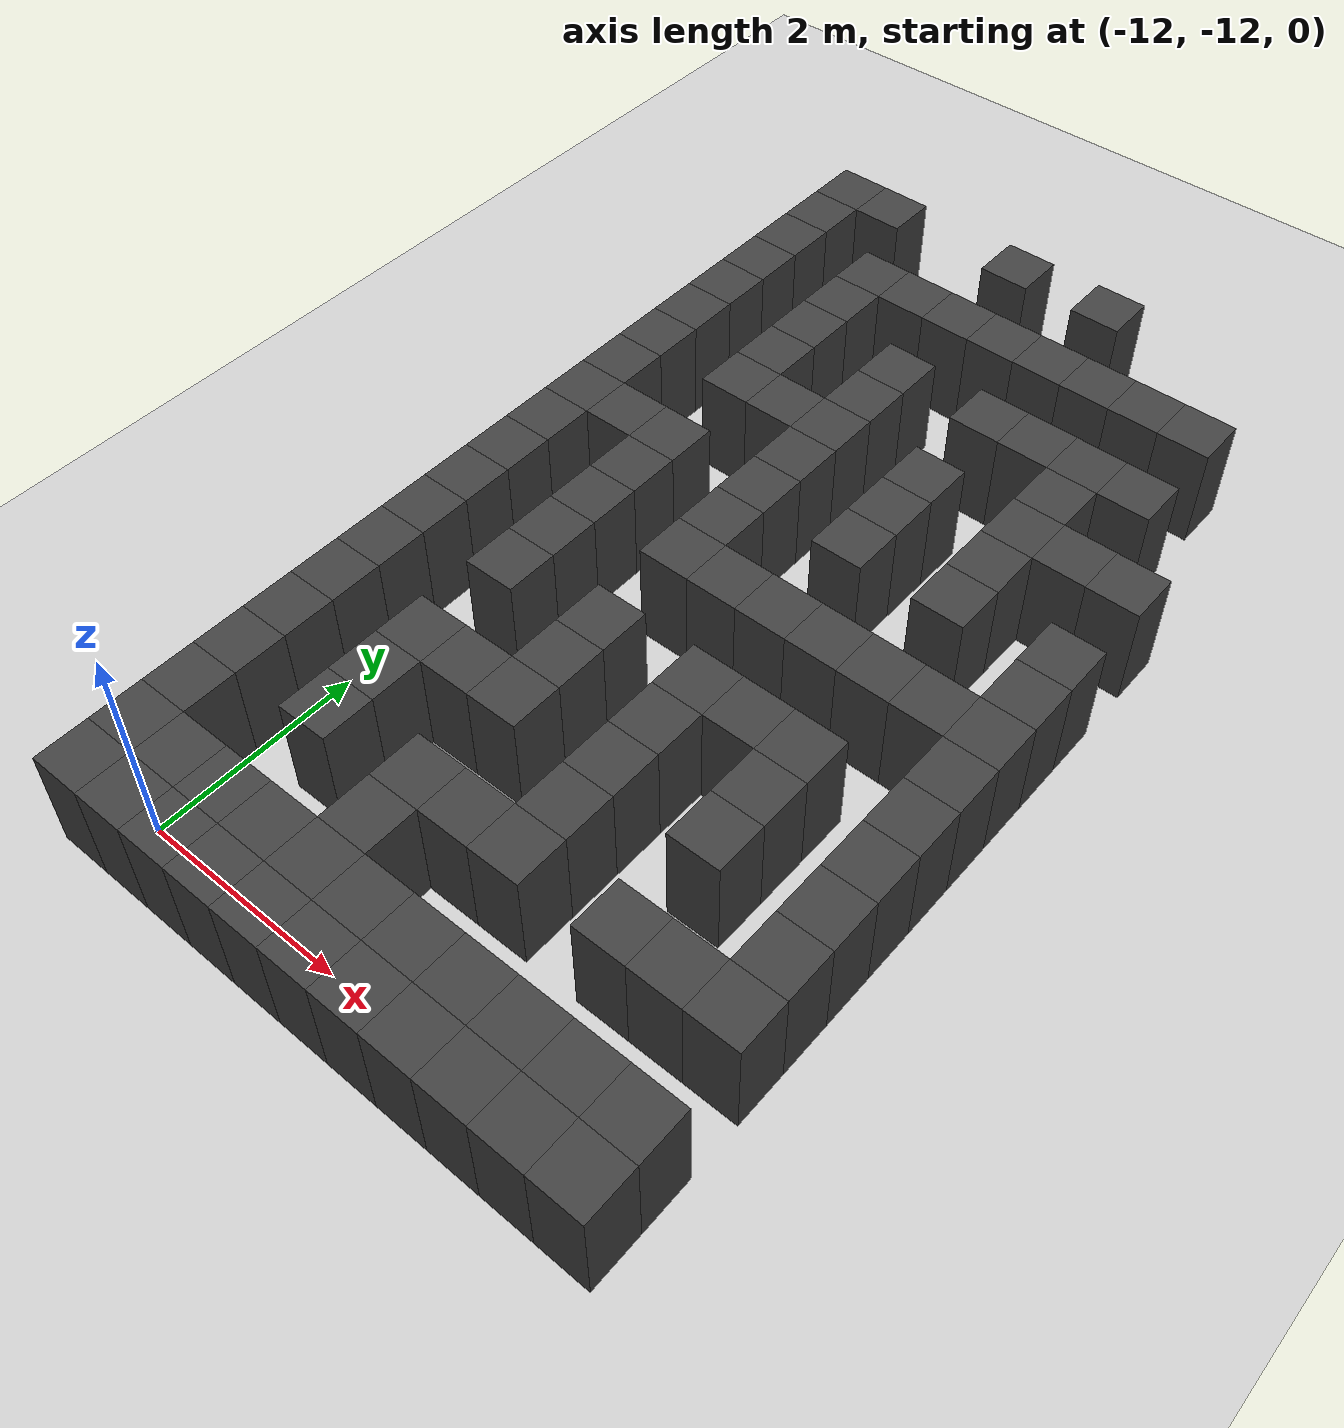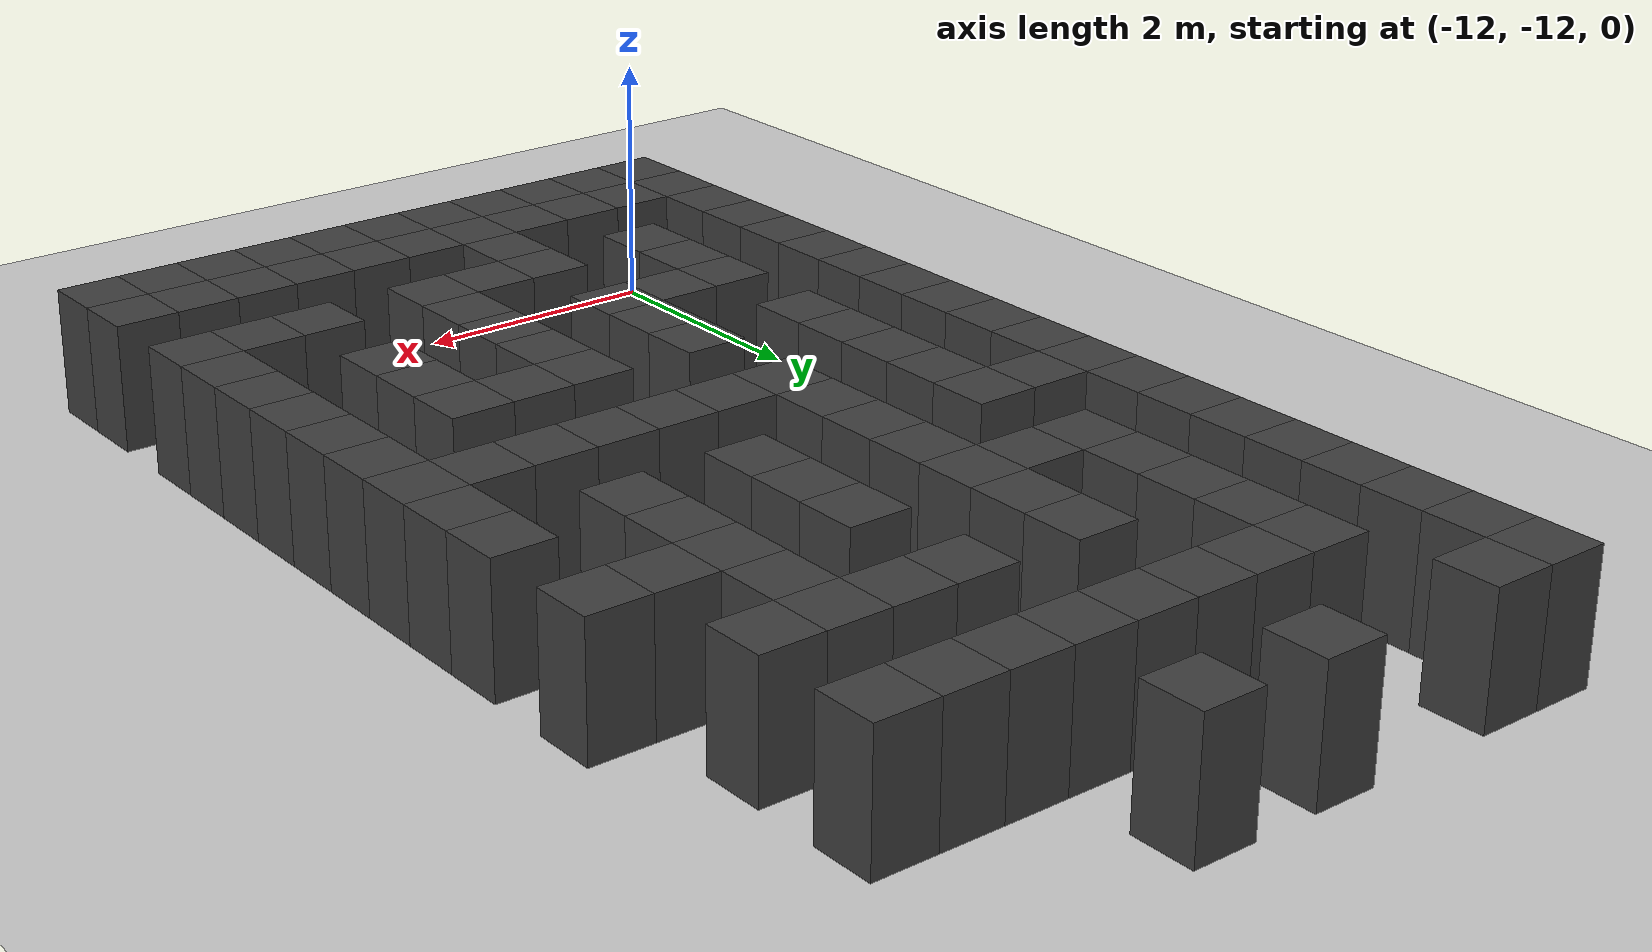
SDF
<sdf version="1.7">
 <world name="map_18228">
  <model name="ground_plane">
   <static>true</static>
   <link name="link">
    <collision name="collision">
     <geometry><plane><normal>0 0 1</normal><size>200 200</size></plane></geometry>
    </collision>
    <visual name="visual">
     <geometry><plane><normal>0 0 1</normal><size>200 200</size></plane></geometry>
     <material><ambient>0.8 0.8 0.8 1</ambient><diffuse>0.8 0.8 0.8 1</diffuse></material>
    </visual>
   </link>
  </model>
  <model name="maze_environment">
   <static>true</static>
   <link name="wall_752">
    <pose>-12.250 -2.750 0.500 0 0 0</pose>
    <collision name="col"><geometry><box><size>0.5 0.5 1.0</size></box></geometry></collision>
    <visual name="vis">
     <geometry><box><size>0.5 0.5 1.0</size></box></geometry>
     <material><ambient>0.15 0.15 0.15 1</ambient><diffuse>0.25 0.25 0.25 1</diffuse></material>
    </visual>
   </link>
   <link name="wall_753">
    <pose>-11.750 -2.750 0.500 0 0 0</pose>
    <collision name="col"><geometry><box><size>0.5 0.5 1.0</size></box></geometry></collision>
    <visual name="vis">
     <geometry><box><size>0.5 0.5 1.0</size></box></geometry>
     <material><ambient>0.15 0.15 0.15 1</ambient><diffuse>0.25 0.25 0.25 1</diffuse></material>
    </visual>
   </link>
   <link name="wall_754">
    <pose>-10.250 -2.750 0.500 0 0 0</pose>
    <collision name="col"><geometry><box><size>0.5 0.5 1.0</size></box></geometry></collision>
    <visual name="vis">
     <geometry><box><size>0.5 0.5 1.0</size></box></geometry>
     <material><ambient>0.15 0.15 0.15 1</ambient><diffuse>0.25 0.25 0.25 1</diffuse></material>
    </visual>
   </link>
   <link name="wall_755">
    <pose>-9.250 -2.750 0.500 0 0 0</pose>
    <collision name="col"><geometry><box><size>0.5 0.5 1.0</size></box></geometry></collision>
    <visual name="vis">
     <geometry><box><size>0.5 0.5 1.0</size></box></geometry>
     <material><ambient>0.15 0.15 0.15 1</ambient><diffuse>0.25 0.25 0.25 1</diffuse></material>
    </visual>
   </link>
   <link name="wall_786">
    <pose>-12.250 -3.250 0.500 0 0 0</pose>
    <collision name="col"><geometry><box><size>0.5 0.5 1.0</size></box></geometry></collision>
    <visual name="vis">
     <geometry><box><size>0.5 0.5 1.0</size></box></geometry>
     <material><ambient>0.15 0.15 0.15 1</ambient><diffuse>0.25 0.25 0.25 1</diffuse></material>
    </visual>
   </link>
   <link name="wall_795">
    <pose>-12.250 -3.750 0.500 0 0 0</pose>
    <collision name="col"><geometry><box><size>0.5 0.5 1.0</size></box></geometry></collision>
    <visual name="vis">
     <geometry><box><size>0.5 0.5 1.0</size></box></geometry>
     <material><ambient>0.15 0.15 0.15 1</ambient><diffuse>0.25 0.25 0.25 1</diffuse></material>
    </visual>
   </link>
   <link name="wall_796">
    <pose>-11.250 -3.750 0.500 0 0 0</pose>
    <collision name="col"><geometry><box><size>0.5 0.5 1.0</size></box></geometry></collision>
    <visual name="vis">
     <geometry><box><size>0.5 0.5 1.0</size></box></geometry>
     <material><ambient>0.15 0.15 0.15 1</ambient><diffuse>0.25 0.25 0.25 1</diffuse></material>
    </visual>
   </link>
   <link name="wall_797">
    <pose>-10.750 -3.750 0.500 0 0 0</pose>
    <collision name="col"><geometry><box><size>0.5 0.5 1.0</size></box></geometry></collision>
    <visual name="vis">
     <geometry><box><size>0.5 0.5 1.0</size></box></geometry>
     <material><ambient>0.15 0.15 0.15 1</ambient><diffuse>0.25 0.25 0.25 1</diffuse></material>
    </visual>
   </link>
   <link name="wall_798">
    <pose>-10.250 -3.750 0.500 0 0 0</pose>
    <collision name="col"><geometry><box><size>0.5 0.5 1.0</size></box></geometry></collision>
    <visual name="vis">
     <geometry><box><size>0.5 0.5 1.0</size></box></geometry>
     <material><ambient>0.15 0.15 0.15 1</ambient><diffuse>0.25 0.25 0.25 1</diffuse></material>
    </visual>
   </link>
   <link name="wall_799">
    <pose>-9.750 -3.750 0.500 0 0 0</pose>
    <collision name="col"><geometry><box><size>0.5 0.5 1.0</size></box></geometry></collision>
    <visual name="vis">
     <geometry><box><size>0.5 0.5 1.0</size></box></geometry>
     <material><ambient>0.15 0.15 0.15 1</ambient><diffuse>0.25 0.25 0.25 1</diffuse></material>
    </visual>
   </link>
   <link name="wall_800">
    <pose>-9.250 -3.750 0.500 0 0 0</pose>
    <collision name="col"><geometry><box><size>0.5 0.5 1.0</size></box></geometry></collision>
    <visual name="vis">
     <geometry><box><size>0.5 0.5 1.0</size></box></geometry>
     <material><ambient>0.15 0.15 0.15 1</ambient><diffuse>0.25 0.25 0.25 1</diffuse></material>
    </visual>
   </link>
   <link name="wall_801">
    <pose>-8.750 -3.750 0.500 0 0 0</pose>
    <collision name="col"><geometry><box><size>0.5 0.5 1.0</size></box></geometry></collision>
    <visual name="vis">
     <geometry><box><size>0.5 0.5 1.0</size></box></geometry>
     <material><ambient>0.15 0.15 0.15 1</ambient><diffuse>0.25 0.25 0.25 1</diffuse></material>
    </visual>
   </link>
   <link name="wall_802">
    <pose>-8.250 -3.750 0.500 0 0 0</pose>
    <collision name="col"><geometry><box><size>0.5 0.5 1.0</size></box></geometry></collision>
    <visual name="vis">
     <geometry><box><size>0.5 0.5 1.0</size></box></geometry>
     <material><ambient>0.15 0.15 0.15 1</ambient><diffuse>0.25 0.25 0.25 1</diffuse></material>
    </visual>
   </link>
   <link name="wall_803">
    <pose>-7.750 -3.750 0.500 0 0 0</pose>
    <collision name="col"><geometry><box><size>0.5 0.5 1.0</size></box></geometry></collision>
    <visual name="vis">
     <geometry><box><size>0.5 0.5 1.0</size></box></geometry>
     <material><ambient>0.15 0.15 0.15 1</ambient><diffuse>0.25 0.25 0.25 1</diffuse></material>
    </visual>
   </link>
   <link name="wall_836">
    <pose>-12.250 -4.250 0.500 0 0 0</pose>
    <collision name="col"><geometry><box><size>0.5 0.5 1.0</size></box></geometry></collision>
    <visual name="vis">
     <geometry><box><size>0.5 0.5 1.0</size></box></geometry>
     <material><ambient>0.15 0.15 0.15 1</ambient><diffuse>0.25 0.25 0.25 1</diffuse></material>
    </visual>
   </link>
   <link name="wall_837">
    <pose>-11.250 -4.250 0.500 0 0 0</pose>
    <collision name="col"><geometry><box><size>0.5 0.5 1.0</size></box></geometry></collision>
    <visual name="vis">
     <geometry><box><size>0.5 0.5 1.0</size></box></geometry>
     <material><ambient>0.15 0.15 0.15 1</ambient><diffuse>0.25 0.25 0.25 1</diffuse></material>
    </visual>
   </link>
   <link name="wall_847">
    <pose>-12.250 -4.750 0.500 0 0 0</pose>
    <collision name="col"><geometry><box><size>0.5 0.5 1.0</size></box></geometry></collision>
    <visual name="vis">
     <geometry><box><size>0.5 0.5 1.0</size></box></geometry>
     <material><ambient>0.15 0.15 0.15 1</ambient><diffuse>0.25 0.25 0.25 1</diffuse></material>
    </visual>
   </link>
   <link name="wall_848">
    <pose>-11.250 -4.750 0.500 0 0 0</pose>
    <collision name="col"><geometry><box><size>0.5 0.5 1.0</size></box></geometry></collision>
    <visual name="vis">
     <geometry><box><size>0.5 0.5 1.0</size></box></geometry>
     <material><ambient>0.15 0.15 0.15 1</ambient><diffuse>0.25 0.25 0.25 1</diffuse></material>
    </visual>
   </link>
   <link name="wall_849">
    <pose>-10.250 -4.750 0.500 0 0 0</pose>
    <collision name="col"><geometry><box><size>0.5 0.5 1.0</size></box></geometry></collision>
    <visual name="vis">
     <geometry><box><size>0.5 0.5 1.0</size></box></geometry>
     <material><ambient>0.15 0.15 0.15 1</ambient><diffuse>0.25 0.25 0.25 1</diffuse></material>
    </visual>
   </link>
   <link name="wall_850">
    <pose>-9.250 -4.750 0.500 0 0 0</pose>
    <collision name="col"><geometry><box><size>0.5 0.5 1.0</size></box></geometry></collision>
    <visual name="vis">
     <geometry><box><size>0.5 0.5 1.0</size></box></geometry>
     <material><ambient>0.15 0.15 0.15 1</ambient><diffuse>0.25 0.25 0.25 1</diffuse></material>
    </visual>
   </link>
   <link name="wall_851">
    <pose>-8.750 -4.750 0.500 0 0 0</pose>
    <collision name="col"><geometry><box><size>0.5 0.5 1.0</size></box></geometry></collision>
    <visual name="vis">
     <geometry><box><size>0.5 0.5 1.0</size></box></geometry>
     <material><ambient>0.15 0.15 0.15 1</ambient><diffuse>0.25 0.25 0.25 1</diffuse></material>
    </visual>
   </link>
   <link name="wall_852">
    <pose>-8.250 -4.750 0.500 0 0 0</pose>
    <collision name="col"><geometry><box><size>0.5 0.5 1.0</size></box></geometry></collision>
    <visual name="vis">
     <geometry><box><size>0.5 0.5 1.0</size></box></geometry>
     <material><ambient>0.15 0.15 0.15 1</ambient><diffuse>0.25 0.25 0.25 1</diffuse></material>
    </visual>
   </link>
   <link name="wall_853">
    <pose>-7.750 -4.750 0.500 0 0 0</pose>
    <collision name="col"><geometry><box><size>0.5 0.5 1.0</size></box></geometry></collision>
    <visual name="vis">
     <geometry><box><size>0.5 0.5 1.0</size></box></geometry>
     <material><ambient>0.15 0.15 0.15 1</ambient><diffuse>0.25 0.25 0.25 1</diffuse></material>
    </visual>
   </link>
   <link name="wall_881">
    <pose>-12.250 -5.250 0.500 0 0 0</pose>
    <collision name="col"><geometry><box><size>0.5 0.5 1.0</size></box></geometry></collision>
    <visual name="vis">
     <geometry><box><size>0.5 0.5 1.0</size></box></geometry>
     <material><ambient>0.15 0.15 0.15 1</ambient><diffuse>0.25 0.25 0.25 1</diffuse></material>
    </visual>
   </link>
   <link name="wall_882">
    <pose>-11.250 -5.250 0.500 0 0 0</pose>
    <collision name="col"><geometry><box><size>0.5 0.5 1.0</size></box></geometry></collision>
    <visual name="vis">
     <geometry><box><size>0.5 0.5 1.0</size></box></geometry>
     <material><ambient>0.15 0.15 0.15 1</ambient><diffuse>0.25 0.25 0.25 1</diffuse></material>
    </visual>
   </link>
   <link name="wall_883">
    <pose>-10.250 -5.250 0.500 0 0 0</pose>
    <collision name="col"><geometry><box><size>0.5 0.5 1.0</size></box></geometry></collision>
    <visual name="vis">
     <geometry><box><size>0.5 0.5 1.0</size></box></geometry>
     <material><ambient>0.15 0.15 0.15 1</ambient><diffuse>0.25 0.25 0.25 1</diffuse></material>
    </visual>
   </link>
   <link name="wall_884">
    <pose>-8.250 -5.250 0.500 0 0 0</pose>
    <collision name="col"><geometry><box><size>0.5 0.5 1.0</size></box></geometry></collision>
    <visual name="vis">
     <geometry><box><size>0.5 0.5 1.0</size></box></geometry>
     <material><ambient>0.15 0.15 0.15 1</ambient><diffuse>0.25 0.25 0.25 1</diffuse></material>
    </visual>
   </link>
   <link name="wall_898">
    <pose>-12.250 -5.750 0.500 0 0 0</pose>
    <collision name="col"><geometry><box><size>0.5 0.5 1.0</size></box></geometry></collision>
    <visual name="vis">
     <geometry><box><size>0.5 0.5 1.0</size></box></geometry>
     <material><ambient>0.15 0.15 0.15 1</ambient><diffuse>0.25 0.25 0.25 1</diffuse></material>
    </visual>
   </link>
   <link name="wall_899">
    <pose>-11.250 -5.750 0.500 0 0 0</pose>
    <collision name="col"><geometry><box><size>0.5 0.5 1.0</size></box></geometry></collision>
    <visual name="vis">
     <geometry><box><size>0.5 0.5 1.0</size></box></geometry>
     <material><ambient>0.15 0.15 0.15 1</ambient><diffuse>0.25 0.25 0.25 1</diffuse></material>
    </visual>
   </link>
   <link name="wall_900">
    <pose>-10.750 -5.750 0.500 0 0 0</pose>
    <collision name="col"><geometry><box><size>0.5 0.5 1.0</size></box></geometry></collision>
    <visual name="vis">
     <geometry><box><size>0.5 0.5 1.0</size></box></geometry>
     <material><ambient>0.15 0.15 0.15 1</ambient><diffuse>0.25 0.25 0.25 1</diffuse></material>
    </visual>
   </link>
   <link name="wall_901">
    <pose>-10.250 -5.750 0.500 0 0 0</pose>
    <collision name="col"><geometry><box><size>0.5 0.5 1.0</size></box></geometry></collision>
    <visual name="vis">
     <geometry><box><size>0.5 0.5 1.0</size></box></geometry>
     <material><ambient>0.15 0.15 0.15 1</ambient><diffuse>0.25 0.25 0.25 1</diffuse></material>
    </visual>
   </link>
   <link name="wall_902">
    <pose>-9.250 -5.750 0.500 0 0 0</pose>
    <collision name="col"><geometry><box><size>0.5 0.5 1.0</size></box></geometry></collision>
    <visual name="vis">
     <geometry><box><size>0.5 0.5 1.0</size></box></geometry>
     <material><ambient>0.15 0.15 0.15 1</ambient><diffuse>0.25 0.25 0.25 1</diffuse></material>
    </visual>
   </link>
   <link name="wall_903">
    <pose>-8.250 -5.750 0.500 0 0 0</pose>
    <collision name="col"><geometry><box><size>0.5 0.5 1.0</size></box></geometry></collision>
    <visual name="vis">
     <geometry><box><size>0.5 0.5 1.0</size></box></geometry>
     <material><ambient>0.15 0.15 0.15 1</ambient><diffuse>0.25 0.25 0.25 1</diffuse></material>
    </visual>
   </link>
   <link name="wall_904">
    <pose>-7.750 -5.750 0.500 0 0 0</pose>
    <collision name="col"><geometry><box><size>0.5 0.5 1.0</size></box></geometry></collision>
    <visual name="vis">
     <geometry><box><size>0.5 0.5 1.0</size></box></geometry>
     <material><ambient>0.15 0.15 0.15 1</ambient><diffuse>0.25 0.25 0.25 1</diffuse></material>
    </visual>
   </link>
   <link name="wall_905">
    <pose>-7.250 -5.750 0.500 0 0 0</pose>
    <collision name="col"><geometry><box><size>0.5 0.5 1.0</size></box></geometry></collision>
    <visual name="vis">
     <geometry><box><size>0.5 0.5 1.0</size></box></geometry>
     <material><ambient>0.15 0.15 0.15 1</ambient><diffuse>0.25 0.25 0.25 1</diffuse></material>
    </visual>
   </link>
   <link name="wall_933">
    <pose>-12.250 -6.250 0.500 0 0 0</pose>
    <collision name="col"><geometry><box><size>0.5 0.5 1.0</size></box></geometry></collision>
    <visual name="vis">
     <geometry><box><size>0.5 0.5 1.0</size></box></geometry>
     <material><ambient>0.15 0.15 0.15 1</ambient><diffuse>0.25 0.25 0.25 1</diffuse></material>
    </visual>
   </link>
   <link name="wall_934">
    <pose>-10.250 -6.250 0.500 0 0 0</pose>
    <collision name="col"><geometry><box><size>0.5 0.5 1.0</size></box></geometry></collision>
    <visual name="vis">
     <geometry><box><size>0.5 0.5 1.0</size></box></geometry>
     <material><ambient>0.15 0.15 0.15 1</ambient><diffuse>0.25 0.25 0.25 1</diffuse></material>
    </visual>
   </link>
   <link name="wall_935">
    <pose>-9.250 -6.250 0.500 0 0 0</pose>
    <collision name="col"><geometry><box><size>0.5 0.5 1.0</size></box></geometry></collision>
    <visual name="vis">
     <geometry><box><size>0.5 0.5 1.0</size></box></geometry>
     <material><ambient>0.15 0.15 0.15 1</ambient><diffuse>0.25 0.25 0.25 1</diffuse></material>
    </visual>
   </link>
   <link name="wall_936">
    <pose>-8.250 -6.250 0.500 0 0 0</pose>
    <collision name="col"><geometry><box><size>0.5 0.5 1.0</size></box></geometry></collision>
    <visual name="vis">
     <geometry><box><size>0.5 0.5 1.0</size></box></geometry>
     <material><ambient>0.15 0.15 0.15 1</ambient><diffuse>0.25 0.25 0.25 1</diffuse></material>
    </visual>
   </link>
   <link name="wall_951">
    <pose>-12.250 -6.750 0.500 0 0 0</pose>
    <collision name="col"><geometry><box><size>0.5 0.5 1.0</size></box></geometry></collision>
    <visual name="vis">
     <geometry><box><size>0.5 0.5 1.0</size></box></geometry>
     <material><ambient>0.15 0.15 0.15 1</ambient><diffuse>0.25 0.25 0.25 1</diffuse></material>
    </visual>
   </link>
   <link name="wall_952">
    <pose>-11.750 -6.750 0.500 0 0 0</pose>
    <collision name="col"><geometry><box><size>0.5 0.5 1.0</size></box></geometry></collision>
    <visual name="vis">
     <geometry><box><size>0.5 0.5 1.0</size></box></geometry>
     <material><ambient>0.15 0.15 0.15 1</ambient><diffuse>0.25 0.25 0.25 1</diffuse></material>
    </visual>
   </link>
   <link name="wall_953">
    <pose>-11.250 -6.750 0.500 0 0 0</pose>
    <collision name="col"><geometry><box><size>0.5 0.5 1.0</size></box></geometry></collision>
    <visual name="vis">
     <geometry><box><size>0.5 0.5 1.0</size></box></geometry>
     <material><ambient>0.15 0.15 0.15 1</ambient><diffuse>0.25 0.25 0.25 1</diffuse></material>
    </visual>
   </link>
   <link name="wall_954">
    <pose>-10.250 -6.750 0.500 0 0 0</pose>
    <collision name="col"><geometry><box><size>0.5 0.5 1.0</size></box></geometry></collision>
    <visual name="vis">
     <geometry><box><size>0.5 0.5 1.0</size></box></geometry>
     <material><ambient>0.15 0.15 0.15 1</ambient><diffuse>0.25 0.25 0.25 1</diffuse></material>
    </visual>
   </link>
   <link name="wall_955">
    <pose>-9.250 -6.750 0.500 0 0 0</pose>
    <collision name="col"><geometry><box><size>0.5 0.5 1.0</size></box></geometry></collision>
    <visual name="vis">
     <geometry><box><size>0.5 0.5 1.0</size></box></geometry>
     <material><ambient>0.15 0.15 0.15 1</ambient><diffuse>0.25 0.25 0.25 1</diffuse></material>
    </visual>
   </link>
   <link name="wall_956">
    <pose>-8.250 -6.750 0.500 0 0 0</pose>
    <collision name="col"><geometry><box><size>0.5 0.5 1.0</size></box></geometry></collision>
    <visual name="vis">
     <geometry><box><size>0.5 0.5 1.0</size></box></geometry>
     <material><ambient>0.15 0.15 0.15 1</ambient><diffuse>0.25 0.25 0.25 1</diffuse></material>
    </visual>
   </link>
   <link name="wall_957">
    <pose>-7.250 -6.750 0.500 0 0 0</pose>
    <collision name="col"><geometry><box><size>0.5 0.5 1.0</size></box></geometry></collision>
    <visual name="vis">
     <geometry><box><size>0.5 0.5 1.0</size></box></geometry>
     <material><ambient>0.15 0.15 0.15 1</ambient><diffuse>0.25 0.25 0.25 1</diffuse></material>
    </visual>
   </link>
   <link name="wall_983">
    <pose>-12.250 -7.250 0.500 0 0 0</pose>
    <collision name="col"><geometry><box><size>0.5 0.5 1.0</size></box></geometry></collision>
    <visual name="vis">
     <geometry><box><size>0.5 0.5 1.0</size></box></geometry>
     <material><ambient>0.15 0.15 0.15 1</ambient><diffuse>0.25 0.25 0.25 1</diffuse></material>
    </visual>
   </link>
   <link name="wall_984">
    <pose>-11.250 -7.250 0.500 0 0 0</pose>
    <collision name="col"><geometry><box><size>0.5 0.5 1.0</size></box></geometry></collision>
    <visual name="vis">
     <geometry><box><size>0.5 0.5 1.0</size></box></geometry>
     <material><ambient>0.15 0.15 0.15 1</ambient><diffuse>0.25 0.25 0.25 1</diffuse></material>
    </visual>
   </link>
   <link name="wall_985">
    <pose>-10.250 -7.250 0.500 0 0 0</pose>
    <collision name="col"><geometry><box><size>0.5 0.5 1.0</size></box></geometry></collision>
    <visual name="vis">
     <geometry><box><size>0.5 0.5 1.0</size></box></geometry>
     <material><ambient>0.15 0.15 0.15 1</ambient><diffuse>0.25 0.25 0.25 1</diffuse></material>
    </visual>
   </link>
   <link name="wall_986">
    <pose>-7.250 -7.250 0.500 0 0 0</pose>
    <collision name="col"><geometry><box><size>0.5 0.5 1.0</size></box></geometry></collision>
    <visual name="vis">
     <geometry><box><size>0.5 0.5 1.0</size></box></geometry>
     <material><ambient>0.15 0.15 0.15 1</ambient><diffuse>0.25 0.25 0.25 1</diffuse></material>
    </visual>
   </link>
   <link name="wall_996">
    <pose>-12.250 -7.750 0.500 0 0 0</pose>
    <collision name="col"><geometry><box><size>0.5 0.5 1.0</size></box></geometry></collision>
    <visual name="vis">
     <geometry><box><size>0.5 0.5 1.0</size></box></geometry>
     <material><ambient>0.15 0.15 0.15 1</ambient><diffuse>0.25 0.25 0.25 1</diffuse></material>
    </visual>
   </link>
   <link name="wall_997">
    <pose>-11.250 -7.750 0.500 0 0 0</pose>
    <collision name="col"><geometry><box><size>0.5 0.5 1.0</size></box></geometry></collision>
    <visual name="vis">
     <geometry><box><size>0.5 0.5 1.0</size></box></geometry>
     <material><ambient>0.15 0.15 0.15 1</ambient><diffuse>0.25 0.25 0.25 1</diffuse></material>
    </visual>
   </link>
   <link name="wall_998">
    <pose>-10.250 -7.750 0.500 0 0 0</pose>
    <collision name="col"><geometry><box><size>0.5 0.5 1.0</size></box></geometry></collision>
    <visual name="vis">
     <geometry><box><size>0.5 0.5 1.0</size></box></geometry>
     <material><ambient>0.15 0.15 0.15 1</ambient><diffuse>0.25 0.25 0.25 1</diffuse></material>
    </visual>
   </link>
   <link name="wall_999">
    <pose>-9.750 -7.750 0.500 0 0 0</pose>
    <collision name="col"><geometry><box><size>0.5 0.5 1.0</size></box></geometry></collision>
    <visual name="vis">
     <geometry><box><size>0.5 0.5 1.0</size></box></geometry>
     <material><ambient>0.15 0.15 0.15 1</ambient><diffuse>0.25 0.25 0.25 1</diffuse></material>
    </visual>
   </link>
   <link name="wall_1000">
    <pose>-9.250 -7.750 0.500 0 0 0</pose>
    <collision name="col"><geometry><box><size>0.5 0.5 1.0</size></box></geometry></collision>
    <visual name="vis">
     <geometry><box><size>0.5 0.5 1.0</size></box></geometry>
     <material><ambient>0.15 0.15 0.15 1</ambient><diffuse>0.25 0.25 0.25 1</diffuse></material>
    </visual>
   </link>
   <link name="wall_1001">
    <pose>-8.750 -7.750 0.500 0 0 0</pose>
    <collision name="col"><geometry><box><size>0.5 0.5 1.0</size></box></geometry></collision>
    <visual name="vis">
     <geometry><box><size>0.5 0.5 1.0</size></box></geometry>
     <material><ambient>0.15 0.15 0.15 1</ambient><diffuse>0.25 0.25 0.25 1</diffuse></material>
    </visual>
   </link>
   <link name="wall_1002">
    <pose>-8.250 -7.750 0.500 0 0 0</pose>
    <collision name="col"><geometry><box><size>0.5 0.5 1.0</size></box></geometry></collision>
    <visual name="vis">
     <geometry><box><size>0.5 0.5 1.0</size></box></geometry>
     <material><ambient>0.15 0.15 0.15 1</ambient><diffuse>0.25 0.25 0.25 1</diffuse></material>
    </visual>
   </link>
   <link name="wall_1003">
    <pose>-7.750 -7.750 0.500 0 0 0</pose>
    <collision name="col"><geometry><box><size>0.5 0.5 1.0</size></box></geometry></collision>
    <visual name="vis">
     <geometry><box><size>0.5 0.5 1.0</size></box></geometry>
     <material><ambient>0.15 0.15 0.15 1</ambient><diffuse>0.25 0.25 0.25 1</diffuse></material>
    </visual>
   </link>
   <link name="wall_1004">
    <pose>-7.250 -7.750 0.500 0 0 0</pose>
    <collision name="col"><geometry><box><size>0.5 0.5 1.0</size></box></geometry></collision>
    <visual name="vis">
     <geometry><box><size>0.5 0.5 1.0</size></box></geometry>
     <material><ambient>0.15 0.15 0.15 1</ambient><diffuse>0.25 0.25 0.25 1</diffuse></material>
    </visual>
   </link>
   <link name="wall_1034">
    <pose>-12.250 -8.250 0.500 0 0 0</pose>
    <collision name="col"><geometry><box><size>0.5 0.5 1.0</size></box></geometry></collision>
    <visual name="vis">
     <geometry><box><size>0.5 0.5 1.0</size></box></geometry>
     <material><ambient>0.15 0.15 0.15 1</ambient><diffuse>0.25 0.25 0.25 1</diffuse></material>
    </visual>
   </link>
   <link name="wall_1035">
    <pose>-11.250 -8.250 0.500 0 0 0</pose>
    <collision name="col"><geometry><box><size>0.5 0.5 1.0</size></box></geometry></collision>
    <visual name="vis">
     <geometry><box><size>0.5 0.5 1.0</size></box></geometry>
     <material><ambient>0.15 0.15 0.15 1</ambient><diffuse>0.25 0.25 0.25 1</diffuse></material>
    </visual>
   </link>
   <link name="wall_1036">
    <pose>-7.250 -8.250 0.500 0 0 0</pose>
    <collision name="col"><geometry><box><size>0.5 0.5 1.0</size></box></geometry></collision>
    <visual name="vis">
     <geometry><box><size>0.5 0.5 1.0</size></box></geometry>
     <material><ambient>0.15 0.15 0.15 1</ambient><diffuse>0.25 0.25 0.25 1</diffuse></material>
    </visual>
   </link>
   <link name="wall_1049">
    <pose>-12.250 -8.750 0.500 0 0 0</pose>
    <collision name="col"><geometry><box><size>0.5 0.5 1.0</size></box></geometry></collision>
    <visual name="vis">
     <geometry><box><size>0.5 0.5 1.0</size></box></geometry>
     <material><ambient>0.15 0.15 0.15 1</ambient><diffuse>0.25 0.25 0.25 1</diffuse></material>
    </visual>
   </link>
   <link name="wall_1050">
    <pose>-11.250 -8.750 0.500 0 0 0</pose>
    <collision name="col"><geometry><box><size>0.5 0.5 1.0</size></box></geometry></collision>
    <visual name="vis">
     <geometry><box><size>0.5 0.5 1.0</size></box></geometry>
     <material><ambient>0.15 0.15 0.15 1</ambient><diffuse>0.25 0.25 0.25 1</diffuse></material>
    </visual>
   </link>
   <link name="wall_1051">
    <pose>-10.250 -8.750 0.500 0 0 0</pose>
    <collision name="col"><geometry><box><size>0.5 0.5 1.0</size></box></geometry></collision>
    <visual name="vis">
     <geometry><box><size>0.5 0.5 1.0</size></box></geometry>
     <material><ambient>0.15 0.15 0.15 1</ambient><diffuse>0.25 0.25 0.25 1</diffuse></material>
    </visual>
   </link>
   <link name="wall_1052">
    <pose>-9.250 -8.750 0.500 0 0 0</pose>
    <collision name="col"><geometry><box><size>0.5 0.5 1.0</size></box></geometry></collision>
    <visual name="vis">
     <geometry><box><size>0.5 0.5 1.0</size></box></geometry>
     <material><ambient>0.15 0.15 0.15 1</ambient><diffuse>0.25 0.25 0.25 1</diffuse></material>
    </visual>
   </link>
   <link name="wall_1053">
    <pose>-8.750 -8.750 0.500 0 0 0</pose>
    <collision name="col"><geometry><box><size>0.5 0.5 1.0</size></box></geometry></collision>
    <visual name="vis">
     <geometry><box><size>0.5 0.5 1.0</size></box></geometry>
     <material><ambient>0.15 0.15 0.15 1</ambient><diffuse>0.25 0.25 0.25 1</diffuse></material>
    </visual>
   </link>
   <link name="wall_1054">
    <pose>-8.250 -8.750 0.500 0 0 0</pose>
    <collision name="col"><geometry><box><size>0.5 0.5 1.0</size></box></geometry></collision>
    <visual name="vis">
     <geometry><box><size>0.5 0.5 1.0</size></box></geometry>
     <material><ambient>0.15 0.15 0.15 1</ambient><diffuse>0.25 0.25 0.25 1</diffuse></material>
    </visual>
   </link>
   <link name="wall_1055">
    <pose>-7.250 -8.750 0.500 0 0 0</pose>
    <collision name="col"><geometry><box><size>0.5 0.5 1.0</size></box></geometry></collision>
    <visual name="vis">
     <geometry><box><size>0.5 0.5 1.0</size></box></geometry>
     <material><ambient>0.15 0.15 0.15 1</ambient><diffuse>0.25 0.25 0.25 1</diffuse></material>
    </visual>
   </link>
   <link name="wall_1082">
    <pose>-12.250 -9.250 0.500 0 0 0</pose>
    <collision name="col"><geometry><box><size>0.5 0.5 1.0</size></box></geometry></collision>
    <visual name="vis">
     <geometry><box><size>0.5 0.5 1.0</size></box></geometry>
     <material><ambient>0.15 0.15 0.15 1</ambient><diffuse>0.25 0.25 0.25 1</diffuse></material>
    </visual>
   </link>
   <link name="wall_1083">
    <pose>-10.250 -9.250 0.500 0 0 0</pose>
    <collision name="col"><geometry><box><size>0.5 0.5 1.0</size></box></geometry></collision>
    <visual name="vis">
     <geometry><box><size>0.5 0.5 1.0</size></box></geometry>
     <material><ambient>0.15 0.15 0.15 1</ambient><diffuse>0.25 0.25 0.25 1</diffuse></material>
    </visual>
   </link>
   <link name="wall_1084">
    <pose>-9.250 -9.250 0.500 0 0 0</pose>
    <collision name="col"><geometry><box><size>0.5 0.5 1.0</size></box></geometry></collision>
    <visual name="vis">
     <geometry><box><size>0.5 0.5 1.0</size></box></geometry>
     <material><ambient>0.15 0.15 0.15 1</ambient><diffuse>0.25 0.25 0.25 1</diffuse></material>
    </visual>
   </link>
   <link name="wall_1085">
    <pose>-8.250 -9.250 0.500 0 0 0</pose>
    <collision name="col"><geometry><box><size>0.5 0.5 1.0</size></box></geometry></collision>
    <visual name="vis">
     <geometry><box><size>0.5 0.5 1.0</size></box></geometry>
     <material><ambient>0.15 0.15 0.15 1</ambient><diffuse>0.25 0.25 0.25 1</diffuse></material>
    </visual>
   </link>
   <link name="wall_1086">
    <pose>-7.250 -9.250 0.500 0 0 0</pose>
    <collision name="col"><geometry><box><size>0.5 0.5 1.0</size></box></geometry></collision>
    <visual name="vis">
     <geometry><box><size>0.5 0.5 1.0</size></box></geometry>
     <material><ambient>0.15 0.15 0.15 1</ambient><diffuse>0.25 0.25 0.25 1</diffuse></material>
    </visual>
   </link>
   <link name="wall_1099">
    <pose>-12.250 -9.750 0.500 0 0 0</pose>
    <collision name="col"><geometry><box><size>0.5 0.5 1.0</size></box></geometry></collision>
    <visual name="vis">
     <geometry><box><size>0.5 0.5 1.0</size></box></geometry>
     <material><ambient>0.15 0.15 0.15 1</ambient><diffuse>0.25 0.25 0.25 1</diffuse></material>
    </visual>
   </link>
   <link name="wall_1100">
    <pose>-11.250 -9.750 0.500 0 0 0</pose>
    <collision name="col"><geometry><box><size>0.5 0.5 1.0</size></box></geometry></collision>
    <visual name="vis">
     <geometry><box><size>0.5 0.5 1.0</size></box></geometry>
     <material><ambient>0.15 0.15 0.15 1</ambient><diffuse>0.25 0.25 0.25 1</diffuse></material>
    </visual>
   </link>
   <link name="wall_1101">
    <pose>-10.750 -9.750 0.500 0 0 0</pose>
    <collision name="col"><geometry><box><size>0.5 0.5 1.0</size></box></geometry></collision>
    <visual name="vis">
     <geometry><box><size>0.5 0.5 1.0</size></box></geometry>
     <material><ambient>0.15 0.15 0.15 1</ambient><diffuse>0.25 0.25 0.25 1</diffuse></material>
    </visual>
   </link>
   <link name="wall_1102">
    <pose>-10.250 -9.750 0.500 0 0 0</pose>
    <collision name="col"><geometry><box><size>0.5 0.5 1.0</size></box></geometry></collision>
    <visual name="vis">
     <geometry><box><size>0.5 0.5 1.0</size></box></geometry>
     <material><ambient>0.15 0.15 0.15 1</ambient><diffuse>0.25 0.25 0.25 1</diffuse></material>
    </visual>
   </link>
   <link name="wall_1103">
    <pose>-9.250 -9.750 0.500 0 0 0</pose>
    <collision name="col"><geometry><box><size>0.5 0.5 1.0</size></box></geometry></collision>
    <visual name="vis">
     <geometry><box><size>0.5 0.5 1.0</size></box></geometry>
     <material><ambient>0.15 0.15 0.15 1</ambient><diffuse>0.25 0.25 0.25 1</diffuse></material>
    </visual>
   </link>
   <link name="wall_1104">
    <pose>-8.250 -9.750 0.500 0 0 0</pose>
    <collision name="col"><geometry><box><size>0.5 0.5 1.0</size></box></geometry></collision>
    <visual name="vis">
     <geometry><box><size>0.5 0.5 1.0</size></box></geometry>
     <material><ambient>0.15 0.15 0.15 1</ambient><diffuse>0.25 0.25 0.25 1</diffuse></material>
    </visual>
   </link>
   <link name="wall_1105">
    <pose>-7.250 -9.750 0.500 0 0 0</pose>
    <collision name="col"><geometry><box><size>0.5 0.5 1.0</size></box></geometry></collision>
    <visual name="vis">
     <geometry><box><size>0.5 0.5 1.0</size></box></geometry>
     <material><ambient>0.15 0.15 0.15 1</ambient><diffuse>0.25 0.25 0.25 1</diffuse></material>
    </visual>
   </link>
   <link name="wall_1133">
    <pose>-12.250 -10.250 0.500 0 0 0</pose>
    <collision name="col"><geometry><box><size>0.5 0.5 1.0</size></box></geometry></collision>
    <visual name="vis">
     <geometry><box><size>0.5 0.5 1.0</size></box></geometry>
     <material><ambient>0.15 0.15 0.15 1</ambient><diffuse>0.25 0.25 0.25 1</diffuse></material>
    </visual>
   </link>
   <link name="wall_1134">
    <pose>-11.250 -10.250 0.500 0 0 0</pose>
    <collision name="col"><geometry><box><size>0.5 0.5 1.0</size></box></geometry></collision>
    <visual name="vis">
     <geometry><box><size>0.5 0.5 1.0</size></box></geometry>
     <material><ambient>0.15 0.15 0.15 1</ambient><diffuse>0.25 0.25 0.25 1</diffuse></material>
    </visual>
   </link>
   <link name="wall_1135">
    <pose>-9.250 -10.250 0.500 0 0 0</pose>
    <collision name="col"><geometry><box><size>0.5 0.5 1.0</size></box></geometry></collision>
    <visual name="vis">
     <geometry><box><size>0.5 0.5 1.0</size></box></geometry>
     <material><ambient>0.15 0.15 0.15 1</ambient><diffuse>0.25 0.25 0.25 1</diffuse></material>
    </visual>
   </link>
   <link name="wall_1136">
    <pose>-7.250 -10.250 0.500 0 0 0</pose>
    <collision name="col"><geometry><box><size>0.5 0.5 1.0</size></box></geometry></collision>
    <visual name="vis">
     <geometry><box><size>0.5 0.5 1.0</size></box></geometry>
     <material><ambient>0.15 0.15 0.15 1</ambient><diffuse>0.25 0.25 0.25 1</diffuse></material>
    </visual>
   </link>
   <link name="wall_1148">
    <pose>-12.250 -10.750 0.500 0 0 0</pose>
    <collision name="col"><geometry><box><size>0.5 0.5 1.0</size></box></geometry></collision>
    <visual name="vis">
     <geometry><box><size>0.5 0.5 1.0</size></box></geometry>
     <material><ambient>0.15 0.15 0.15 1</ambient><diffuse>0.25 0.25 0.25 1</diffuse></material>
    </visual>
   </link>
   <link name="wall_1149">
    <pose>-11.250 -10.750 0.500 0 0 0</pose>
    <collision name="col"><geometry><box><size>0.5 0.5 1.0</size></box></geometry></collision>
    <visual name="vis">
     <geometry><box><size>0.5 0.5 1.0</size></box></geometry>
     <material><ambient>0.15 0.15 0.15 1</ambient><diffuse>0.25 0.25 0.25 1</diffuse></material>
    </visual>
   </link>
   <link name="wall_1150">
    <pose>-10.250 -10.750 0.500 0 0 0</pose>
    <collision name="col"><geometry><box><size>0.5 0.5 1.0</size></box></geometry></collision>
    <visual name="vis">
     <geometry><box><size>0.5 0.5 1.0</size></box></geometry>
     <material><ambient>0.15 0.15 0.15 1</ambient><diffuse>0.25 0.25 0.25 1</diffuse></material>
    </visual>
   </link>
   <link name="wall_1151">
    <pose>-9.750 -10.750 0.500 0 0 0</pose>
    <collision name="col"><geometry><box><size>0.5 0.5 1.0</size></box></geometry></collision>
    <visual name="vis">
     <geometry><box><size>0.5 0.5 1.0</size></box></geometry>
     <material><ambient>0.15 0.15 0.15 1</ambient><diffuse>0.25 0.25 0.25 1</diffuse></material>
    </visual>
   </link>
   <link name="wall_1152">
    <pose>-9.250 -10.750 0.500 0 0 0</pose>
    <collision name="col"><geometry><box><size>0.5 0.5 1.0</size></box></geometry></collision>
    <visual name="vis">
     <geometry><box><size>0.5 0.5 1.0</size></box></geometry>
     <material><ambient>0.15 0.15 0.15 1</ambient><diffuse>0.25 0.25 0.25 1</diffuse></material>
    </visual>
   </link>
   <link name="wall_1153">
    <pose>-8.250 -10.750 0.500 0 0 0</pose>
    <collision name="col"><geometry><box><size>0.5 0.5 1.0</size></box></geometry></collision>
    <visual name="vis">
     <geometry><box><size>0.5 0.5 1.0</size></box></geometry>
     <material><ambient>0.15 0.15 0.15 1</ambient><diffuse>0.25 0.25 0.25 1</diffuse></material>
    </visual>
   </link>
   <link name="wall_1154">
    <pose>-7.750 -10.750 0.500 0 0 0</pose>
    <collision name="col"><geometry><box><size>0.5 0.5 1.0</size></box></geometry></collision>
    <visual name="vis">
     <geometry><box><size>0.5 0.5 1.0</size></box></geometry>
     <material><ambient>0.15 0.15 0.15 1</ambient><diffuse>0.25 0.25 0.25 1</diffuse></material>
    </visual>
   </link>
   <link name="wall_1155">
    <pose>-7.250 -10.750 0.500 0 0 0</pose>
    <collision name="col"><geometry><box><size>0.5 0.5 1.0</size></box></geometry></collision>
    <visual name="vis">
     <geometry><box><size>0.5 0.5 1.0</size></box></geometry>
     <material><ambient>0.15 0.15 0.15 1</ambient><diffuse>0.25 0.25 0.25 1</diffuse></material>
    </visual>
   </link>
   <link name="wall_1185">
    <pose>-12.250 -11.250 0.500 0 0 0</pose>
    <collision name="col"><geometry><box><size>0.5 0.5 1.0</size></box></geometry></collision>
    <visual name="vis">
     <geometry><box><size>0.5 0.5 1.0</size></box></geometry>
     <material><ambient>0.15 0.15 0.15 1</ambient><diffuse>0.25 0.25 0.25 1</diffuse></material>
    </visual>
   </link>
   <link name="wall_1186">
    <pose>-10.250 -11.250 0.500 0 0 0</pose>
    <collision name="col"><geometry><box><size>0.5 0.5 1.0</size></box></geometry></collision>
    <visual name="vis">
     <geometry><box><size>0.5 0.5 1.0</size></box></geometry>
     <material><ambient>0.15 0.15 0.15 1</ambient><diffuse>0.25 0.25 0.25 1</diffuse></material>
    </visual>
   </link>
   <link name="wall_1192">
    <pose>-12.250 -11.750 0.500 0 0 0</pose>
    <collision name="col"><geometry><box><size>0.5 0.5 1.0</size></box></geometry></collision>
    <visual name="vis">
     <geometry><box><size>0.5 0.5 1.0</size></box></geometry>
     <material><ambient>0.15 0.15 0.15 1</ambient><diffuse>0.25 0.25 0.25 1</diffuse></material>
    </visual>
   </link>
   <link name="wall_1193">
    <pose>-11.750 -11.750 0.500 0 0 0</pose>
    <collision name="col"><geometry><box><size>0.5 0.5 1.0</size></box></geometry></collision>
    <visual name="vis">
     <geometry><box><size>0.5 0.5 1.0</size></box></geometry>
     <material><ambient>0.15 0.15 0.15 1</ambient><diffuse>0.25 0.25 0.25 1</diffuse></material>
    </visual>
   </link>
   <link name="wall_1194">
    <pose>-11.250 -11.750 0.500 0 0 0</pose>
    <collision name="col"><geometry><box><size>0.5 0.5 1.0</size></box></geometry></collision>
    <visual name="vis">
     <geometry><box><size>0.5 0.5 1.0</size></box></geometry>
     <material><ambient>0.15 0.15 0.15 1</ambient><diffuse>0.25 0.25 0.25 1</diffuse></material>
    </visual>
   </link>
   <link name="wall_1195">
    <pose>-10.750 -11.750 0.500 0 0 0</pose>
    <collision name="col"><geometry><box><size>0.5 0.5 1.0</size></box></geometry></collision>
    <visual name="vis">
     <geometry><box><size>0.5 0.5 1.0</size></box></geometry>
     <material><ambient>0.15 0.15 0.15 1</ambient><diffuse>0.25 0.25 0.25 1</diffuse></material>
    </visual>
   </link>
   <link name="wall_1196">
    <pose>-10.250 -11.750 0.500 0 0 0</pose>
    <collision name="col"><geometry><box><size>0.5 0.5 1.0</size></box></geometry></collision>
    <visual name="vis">
     <geometry><box><size>0.5 0.5 1.0</size></box></geometry>
     <material><ambient>0.15 0.15 0.15 1</ambient><diffuse>0.25 0.25 0.25 1</diffuse></material>
    </visual>
   </link>
   <link name="wall_1197">
    <pose>-9.750 -11.750 0.500 0 0 0</pose>
    <collision name="col"><geometry><box><size>0.5 0.5 1.0</size></box></geometry></collision>
    <visual name="vis">
     <geometry><box><size>0.5 0.5 1.0</size></box></geometry>
     <material><ambient>0.15 0.15 0.15 1</ambient><diffuse>0.25 0.25 0.25 1</diffuse></material>
    </visual>
   </link>
   <link name="wall_1198">
    <pose>-9.250 -11.750 0.500 0 0 0</pose>
    <collision name="col"><geometry><box><size>0.5 0.5 1.0</size></box></geometry></collision>
    <visual name="vis">
     <geometry><box><size>0.5 0.5 1.0</size></box></geometry>
     <material><ambient>0.15 0.15 0.15 1</ambient><diffuse>0.25 0.25 0.25 1</diffuse></material>
    </visual>
   </link>
   <link name="wall_1199">
    <pose>-8.750 -11.750 0.500 0 0 0</pose>
    <collision name="col"><geometry><box><size>0.5 0.5 1.0</size></box></geometry></collision>
    <visual name="vis">
     <geometry><box><size>0.5 0.5 1.0</size></box></geometry>
     <material><ambient>0.15 0.15 0.15 1</ambient><diffuse>0.25 0.25 0.25 1</diffuse></material>
    </visual>
   </link>
   <link name="wall_1200">
    <pose>-8.250 -11.750 0.500 0 0 0</pose>
    <collision name="col"><geometry><box><size>0.5 0.5 1.0</size></box></geometry></collision>
    <visual name="vis">
     <geometry><box><size>0.5 0.5 1.0</size></box></geometry>
     <material><ambient>0.15 0.15 0.15 1</ambient><diffuse>0.25 0.25 0.25 1</diffuse></material>
    </visual>
   </link>
   <link name="wall_1201">
    <pose>-7.750 -11.750 0.500 0 0 0</pose>
    <collision name="col"><geometry><box><size>0.5 0.5 1.0</size></box></geometry></collision>
    <visual name="vis">
     <geometry><box><size>0.5 0.5 1.0</size></box></geometry>
     <material><ambient>0.15 0.15 0.15 1</ambient><diffuse>0.25 0.25 0.25 1</diffuse></material>
    </visual>
   </link>
   <link name="wall_1202">
    <pose>-7.250 -11.750 0.500 0 0 0</pose>
    <collision name="col"><geometry><box><size>0.5 0.5 1.0</size></box></geometry></collision>
    <visual name="vis">
     <geometry><box><size>0.5 0.5 1.0</size></box></geometry>
     <material><ambient>0.15 0.15 0.15 1</ambient><diffuse>0.25 0.25 0.25 1</diffuse></material>
    </visual>
   </link>
   <link name="wall_1240">
    <pose>-12.250 -12.250 0.500 0 0 0</pose>
    <collision name="col"><geometry><box><size>0.5 0.5 1.0</size></box></geometry></collision>
    <visual name="vis">
     <geometry><box><size>0.5 0.5 1.0</size></box></geometry>
     <material><ambient>0.15 0.15 0.15 1</ambient><diffuse>0.25 0.25 0.25 1</diffuse></material>
    </visual>
   </link>
   <link name="wall_1241">
    <pose>-11.750 -12.250 0.500 0 0 0</pose>
    <collision name="col"><geometry><box><size>0.5 0.5 1.0</size></box></geometry></collision>
    <visual name="vis">
     <geometry><box><size>0.5 0.5 1.0</size></box></geometry>
     <material><ambient>0.15 0.15 0.15 1</ambient><diffuse>0.25 0.25 0.25 1</diffuse></material>
    </visual>
   </link>
   <link name="wall_1242">
    <pose>-11.250 -12.250 0.500 0 0 0</pose>
    <collision name="col"><geometry><box><size>0.5 0.5 1.0</size></box></geometry></collision>
    <visual name="vis">
     <geometry><box><size>0.5 0.5 1.0</size></box></geometry>
     <material><ambient>0.15 0.15 0.15 1</ambient><diffuse>0.25 0.25 0.25 1</diffuse></material>
    </visual>
   </link>
   <link name="wall_1243">
    <pose>-10.750 -12.250 0.500 0 0 0</pose>
    <collision name="col"><geometry><box><size>0.5 0.5 1.0</size></box></geometry></collision>
    <visual name="vis">
     <geometry><box><size>0.5 0.5 1.0</size></box></geometry>
     <material><ambient>0.15 0.15 0.15 1</ambient><diffuse>0.25 0.25 0.25 1</diffuse></material>
    </visual>
   </link>
   <link name="wall_1244">
    <pose>-10.250 -12.250 0.500 0 0 0</pose>
    <collision name="col"><geometry><box><size>0.5 0.5 1.0</size></box></geometry></collision>
    <visual name="vis">
     <geometry><box><size>0.5 0.5 1.0</size></box></geometry>
     <material><ambient>0.15 0.15 0.15 1</ambient><diffuse>0.25 0.25 0.25 1</diffuse></material>
    </visual>
   </link>
   <link name="wall_1245">
    <pose>-9.750 -12.250 0.500 0 0 0</pose>
    <collision name="col"><geometry><box><size>0.5 0.5 1.0</size></box></geometry></collision>
    <visual name="vis">
     <geometry><box><size>0.5 0.5 1.0</size></box></geometry>
     <material><ambient>0.15 0.15 0.15 1</ambient><diffuse>0.25 0.25 0.25 1</diffuse></material>
    </visual>
   </link>
   <link name="wall_1246">
    <pose>-9.250 -12.250 0.500 0 0 0</pose>
    <collision name="col"><geometry><box><size>0.5 0.5 1.0</size></box></geometry></collision>
    <visual name="vis">
     <geometry><box><size>0.5 0.5 1.0</size></box></geometry>
     <material><ambient>0.15 0.15 0.15 1</ambient><diffuse>0.25 0.25 0.25 1</diffuse></material>
    </visual>
   </link>
   <link name="wall_1247">
    <pose>-8.750 -12.250 0.500 0 0 0</pose>
    <collision name="col"><geometry><box><size>0.5 0.5 1.0</size></box></geometry></collision>
    <visual name="vis">
     <geometry><box><size>0.5 0.5 1.0</size></box></geometry>
     <material><ambient>0.15 0.15 0.15 1</ambient><diffuse>0.25 0.25 0.25 1</diffuse></material>
    </visual>
   </link>
   <link name="wall_1248">
    <pose>-8.250 -12.250 0.500 0 0 0</pose>
    <collision name="col"><geometry><box><size>0.5 0.5 1.0</size></box></geometry></collision>
    <visual name="vis">
     <geometry><box><size>0.5 0.5 1.0</size></box></geometry>
     <material><ambient>0.15 0.15 0.15 1</ambient><diffuse>0.25 0.25 0.25 1</diffuse></material>
    </visual>
   </link>
   <link name="wall_1249">
    <pose>-7.750 -12.250 0.500 0 0 0</pose>
    <collision name="col"><geometry><box><size>0.5 0.5 1.0</size></box></geometry></collision>
    <visual name="vis">
     <geometry><box><size>0.5 0.5 1.0</size></box></geometry>
     <material><ambient>0.15 0.15 0.15 1</ambient><diffuse>0.25 0.25 0.25 1</diffuse></material>
    </visual>
   </link>
   <link name="wall_1250">
    <pose>-7.250 -12.250 0.500 0 0 0</pose>
    <collision name="col"><geometry><box><size>0.5 0.5 1.0</size></box></geometry></collision>
    <visual name="vis">
     <geometry><box><size>0.5 0.5 1.0</size></box></geometry>
     <material><ambient>0.15 0.15 0.15 1</ambient><diffuse>0.25 0.25 0.25 1</diffuse></material>
    </visual>
   </link>
  </model>
 </world>
</sdf>
